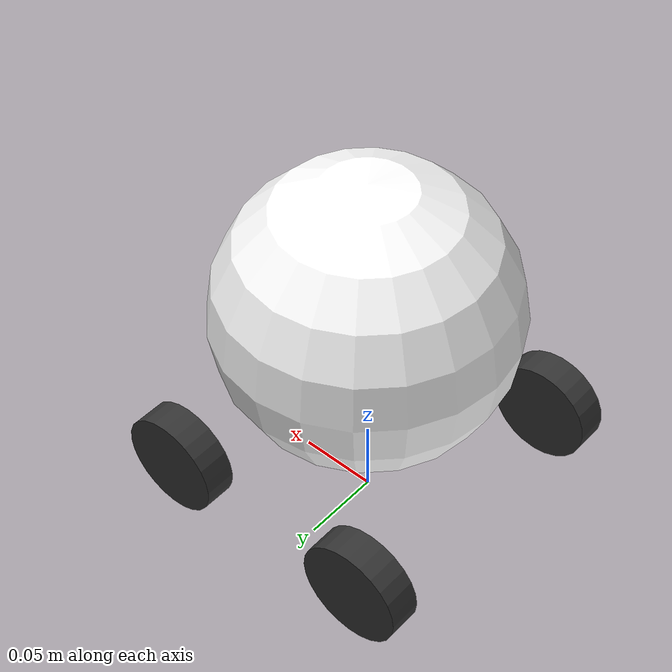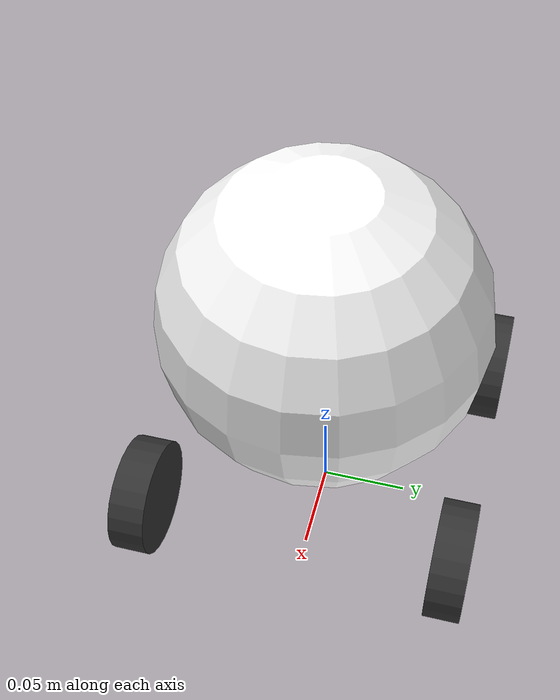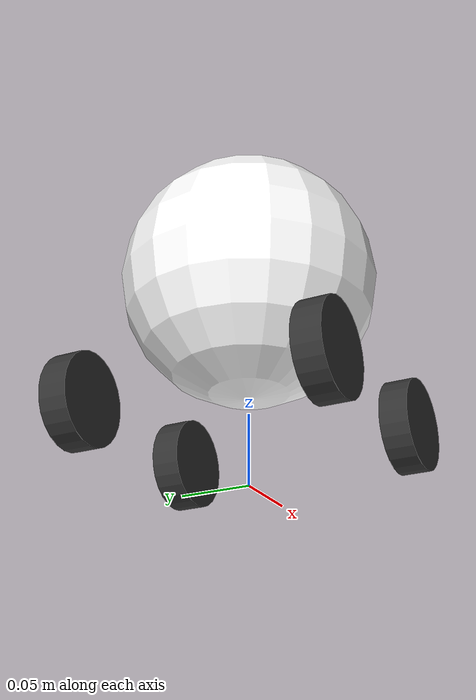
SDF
<?xml version="1.0" ?>
<sdf version="1.6">

    <model name='simple_robot'>
    <!--     BODY PARTS        -->
        <link name='chassis'>
            <pose>0 0 .15 0 0 0</pose>
            <inertial>
              <mass>30</mass>
              <inertia>
                <ixx>0.005</ixx>
                <ixy>0</ixy>
                <ixz>0</ixz>
                <iyy>0.005</iyy>
                <iyz>0</iyz>
                <izz>0.005</izz>
              </inertia>
            </inertial>
            <visual name='visual'>
              <geometry>
                <sphere>
                    <radius>0.09</radius>
                </sphere>
              </geometry>
              <material>
                <diffuse>1.0 1.0 1.0</diffuse>
                <pbr>
                    <specular>
                        <albedo_map>eye.png</albedo_map>
                        <specular_map>eye.png</specular_map>
                    </specular>
                  </pbr>
              </material>
            </visual>
            <collision name='collision'>
              <geometry>
                <sphere>
                    <radius>0.09</radius>
                </sphere>
              </geometry>
            </collision>
          </link>

    <!--        Wheel section   -->

      <link name='rear_left_wheel'>
        <pose>-0.07 0.088 0.05 0 1.5707 1.5707</pose>
      <inertial>
        <mass>0.408233</mass>
        <inertia>
          <ixx>0.03</ixx>
          <iyy>0.03</iyy>
          <izz>0.03</izz>
          <ixy>0</ixy>
          <ixz>0</ixz>
          <iyz>0</iyz>
        </inertia>
      </inertial>
        <visual name='visual'>
          <geometry>
            <cylinder>
              <radius>0.0325</radius>
              <length>.02</length>
            </cylinder>
          </geometry>
          <material>
            <ambient>0.2 0.2 0.2 1</ambient>
            <diffuse>0.2 0.2 0.2 1</diffuse>
            <specular>0.2 0.2 0.2 1</specular>
                <pbr>
                    <metal>
                        <albedo_map>wheel4.png</albedo_map>
                        <normal_map>wheel4.png</normal_map>
                    </metal>
              </pbr>
          </material>
        </visual>
        <collision name='collision'>
          <geometry>
            <cylinder>
              <radius>0.0325</radius>
              <length>.02</length>
            </cylinder>
          </geometry>
        <surface>
          <friction>
            <dynamic_friction>1.0</dynamic_friction>
            <ode>
              <mu>1.0</mu>
              <mu2>1</mu2>
              <fdir1>1 1 0</fdir1>
              <slip1>0.1</slip1>
              <slip2>0.1</slip2>
            </ode>
          </friction>
          <contact>
            <ode>
              <min_depth>0.005</min_depth>
              <kp>1e7</kp>
            </ode>
          </contact>
        </surface>
        </collision>
      </link>

      <link name='rear_right_wheel'>
        <pose> -0.07 -0.088 0.05 0 1.5707 1.5707 </pose>
      <inertial>
        <mass>0.408233</mass>
        <inertia>
          <ixx>0.03</ixx>
          <iyy>0.03</iyy>
          <izz>0.03</izz>
          <ixy>0</ixy>
          <ixz>0</ixz>
          <iyz>0</iyz>
        </inertia>
      </inertial>
        <visual name='visual'>
          <geometry>
            <cylinder>
              <radius>0.0325</radius>
              <length>.02</length>
            </cylinder>
          </geometry>
          <material>
            <ambient>0.2 0.2 0.2 1</ambient>
            <diffuse>0.2 0.2 0.2 1</diffuse>
            <specular>0.2 0.2 0.2 1</specular>
                <pbr>
                    <metal>
                        <albedo_map>wheel1.png</albedo_map>
                        <normal_map>wheel1.png</normal_map>
                    </metal>
              </pbr>
          </material>
        </visual>
        <collision name='collision'>
          <geometry>
            <cylinder>
              <radius>0.0325</radius>
              <length>.02</length>
            </cylinder>
          </geometry>
        <surface>
          <friction>
            <dynamic_friction>1.0</dynamic_friction>
            <ode>
              <mu>1.0</mu>
              <mu2>1.0</mu2>
              <fdir1>1 1 0</fdir1>
              <slip1>0.1</slip1>
              <slip2>0.1</slip2>
            </ode>
          </friction>
          <contact>
            <ode>
              <min_depth>0.005</min_depth>
              <kp>1e7</kp>
            </ode>
          </contact>
        </surface>
        </collision>
      </link>

      <link name='front_left_wheel'>
        <pose>0.07 0.088 0.05 0 1.5707 1.5707</pose>
      <inertial>
        <mass>0.408233</mass>
        <inertia>
          <ixx>0.03</ixx>
          <iyy>0.03</iyy>
          <izz>0.03</izz>
          <ixy>0</ixy>
          <ixz>0</ixz>
          <iyz>0</iyz>
        </inertia>
      </inertial>
        <visual name='visual'>
          <geometry>
            <cylinder>
              <radius>0.0325</radius>
              <length>.02</length>
            </cylinder>
          </geometry>
          <material>
            <ambient>0.2 0.2 0.2 1</ambient>
            <diffuse>0.2 0.2 0.2 1</diffuse>
            <specular>0.2 0.2 0.2 1</specular>
                <pbr>
                    <metal>
                        <albedo_map>wheel2.png</albedo_map>
                        <normal_map>wheel2.png</normal_map>
                    </metal>
              </pbr>
          </material>
        </visual>
        <collision name='collision'>
          <geometry>
            <cylinder>
              <radius>0.0325</radius>
              <length>.02</length>
            </cylinder>
          </geometry>
        <surface>
          <friction>
            <dynamic_friction>1.0</dynamic_friction>
            <ode>
              <mu>1.0</mu>
              <mu2>1.0</mu2>
              <fdir1>1 1 0</fdir1>
              <slip1>0.1</slip1>
              <slip2>0.1</slip2>
            </ode>
          </friction>
          <contact>
            <ode>
              <min_depth>0.005</min_depth>
              <kp>1e7</kp>
            </ode>
          </contact>
        </surface>
        </collision>
      </link>

      <link name='front_right_wheel'>
        <pose>0.07 -0.088 0.05 0 1.5707 1.5707</pose>
      <inertial>
        <mass>0.408233</mass>
        <inertia>
          <ixx>0.03</ixx>
          <iyy>0.03</iyy>
          <izz>0.03</izz>
          <ixy>0</ixy>
          <ixz>0</ixz>
          <iyz>0</iyz>
        </inertia>
      </inertial>
        <visual name='visual'>
          <geometry>
             <cylinder>
              <radius>0.0325</radius>
              <length>.02</length>
            </cylinder>
          </geometry>
          <material>
            <ambient>0.2 0.2 0.2 1</ambient>
            <diffuse>0.2 0.2 0.2 1</diffuse>
            <specular>0.2 0.2 0.2 1</specular>
                <pbr>
                    <metal>
                        <albedo_map>wheel3.png</albedo_map>
                        <normal_map>wheel3.png</normal_map>
                    </metal>
              </pbr>
          </material>
        </visual>
        <collision name='collision'>
          <geometry>
            <cylinder>
              <radius>0.0325</radius>
              <length>.02</length>
            </cylinder>
          </geometry>
        <surface>
          <friction>
            <dynamic_friction>1.0</dynamic_friction>
            <ode>
              <mu>1.0</mu>
              <mu2>1.0</mu2>
              <fdir1>1 1 0</fdir1>
              <slip1>0.1</slip1>
              <slip2>0.1</slip2>
            </ode>
          </friction>
          <contact>
            <ode>
              <min_depth>0.005</min_depth>
              <kp>1e7</kp>
            </ode>
          </contact>
        </surface>
        </collision>
      </link>

    <!--        Joint section        -->

    <joint name='rear_left_wheel_joint' type='revolute'>
        <parent>chassis</parent>
        <child>rear_left_wheel</child>
        <axis>
          <xyz>0 1 0</xyz>
        <limit>
            <lower>-1.79769e+308</lower>    <!--negative infinity-->
            <upper>1.79769e+308</upper>     <!--positive infinity-->
        </limit>
        <dynamics>
          <damping>1</damping>
          <friction>1</friction>
          <spring_reference>0</spring_reference>
          <spring_stiffness>0</spring_stiffness>
        </dynamics>
        <use_parent_model_frame>1</use_parent_model_frame>
        </axis>
      <physics>
        <ode>
          <implicit_spring_damper>1</implicit_spring_damper>
          <cfm_damping>1</cfm_damping>
          <limit>
            <cfm>0</cfm>
            <erp>0.2</erp>
          </limit>
        </ode>
      </physics>
      </joint>

    <joint name='rear_right_wheel_joint' type='revolute'>
        <parent>chassis</parent>
        <child>rear_right_wheel</child>
        <axis>
          <xyz>0 1 0</xyz>
        <limit>
            <lower>-1.79769e+308</lower>    <!--negative infinity-->
            <upper>1.79769e+308</upper>     <!--positive infinity-->
        </limit>
        <dynamics>
          <damping>1</damping>
          <friction>1</friction>
          <spring_reference>0</spring_reference>
          <spring_stiffness>0</spring_stiffness>
        </dynamics>
        <use_parent_model_frame>1</use_parent_model_frame>
        </axis>
      <physics>
        <ode>
          <implicit_spring_damper>1</implicit_spring_damper>
          <cfm_damping>1</cfm_damping>
          <limit>
            <cfm>0</cfm>
            <erp>0.2</erp>
          </limit>
        </ode>
      </physics>
      </joint>

    <joint name='front_left_wheel_joint' type='revolute'>
        <parent>chassis</parent>
        <child>front_left_wheel</child>
        <axis>
          <xyz>0 1 0</xyz>
        <limit>
            <lower>-1.79769e+308</lower>    <!--negative infinity-->
            <upper>1.79769e+308</upper>     <!--positive infinity-->
        </limit>
        <dynamics>
          <damping>1</damping>
          <friction>1</friction>
          <spring_reference>0</spring_reference>
          <spring_stiffness>0</spring_stiffness>
        </dynamics>
        <use_parent_model_frame>1</use_parent_model_frame>
        </axis>
      <physics>
        <ode>
          <implicit_spring_damper>1</implicit_spring_damper>
          <cfm_damping>1</cfm_damping>
          <limit>
            <cfm>0</cfm>
            <erp>0.2</erp>
          </limit>
        </ode>
      </physics>
      </joint>

    <joint name='front_right_wheel_joint' type='revolute'>
        <parent>chassis</parent>
        <child>front_right_wheel</child>
        <axis>
          <xyz>0 1 0</xyz>
        <limit>
            <lower>-1.79769e+308</lower>    <!--negative infinity-->
            <upper>1.79769e+308</upper>     <!--positive infinity-->
        </limit>
        <dynamics>
          <damping>1</damping>
          <friction>1</friction>
          <spring_reference>0</spring_reference>
          <spring_stiffness>0</spring_stiffness>
        </dynamics>
        <use_parent_model_frame>1</use_parent_model_frame>
        </axis>
      <physics>
        <ode>
          <implicit_spring_damper>1</implicit_spring_damper>
          <cfm_damping>1</cfm_damping>
          <limit>
            <cfm>0</cfm>
            <erp>0.2</erp>
          </limit>
        </ode>
      </physics>
      </joint>

      <plugin
        filename="libgz-sim-diff-drive-system.so"
        name="gz::sim::systems::DiffDrive">
        <left_joint>rear_left_wheel_joint</left_joint>
        <left_joint>front_left_wheel_joint</left_joint>
        <right_joint>rear_right_wheel_joint</right_joint>
          <right_joint>front_right_wheel_joint</right_joint>
        <wheel_separation>1.25</wheel_separation>
        <wheel_radius>0.3</wheel_radius>
        <topic>cmd_vel</topic>
      </plugin>

  </model>

</sdf>
